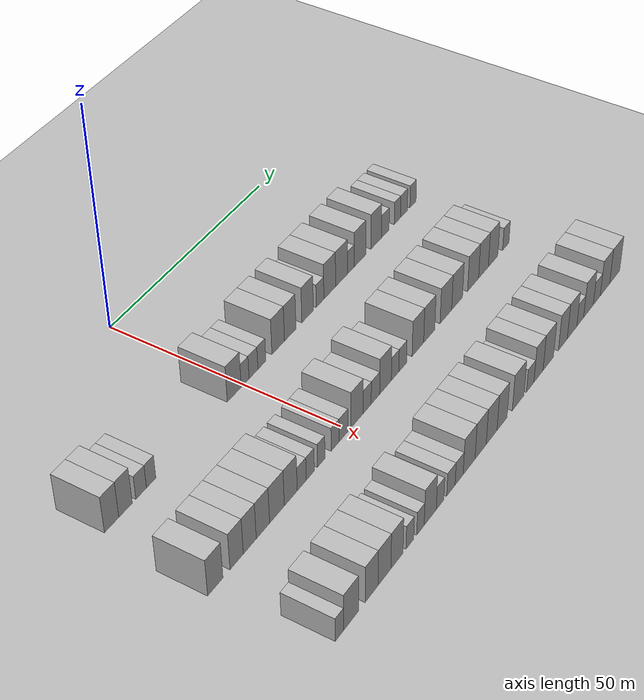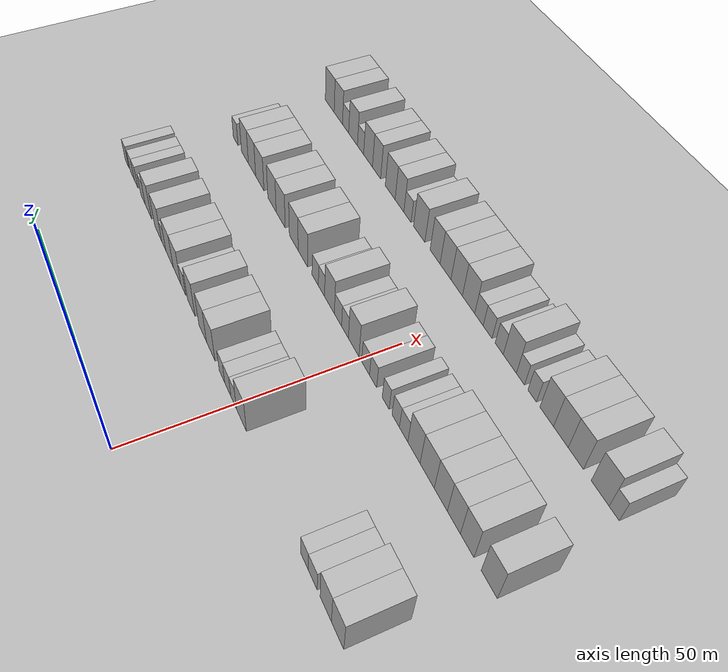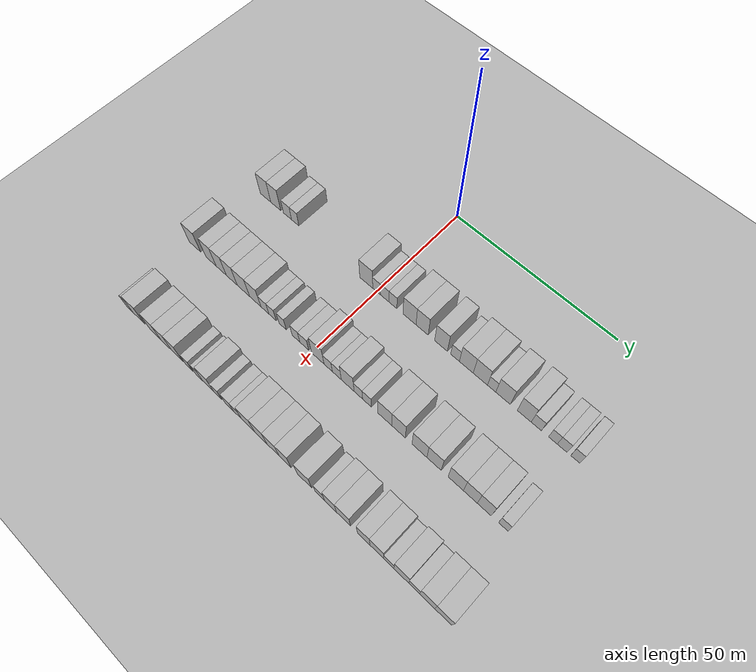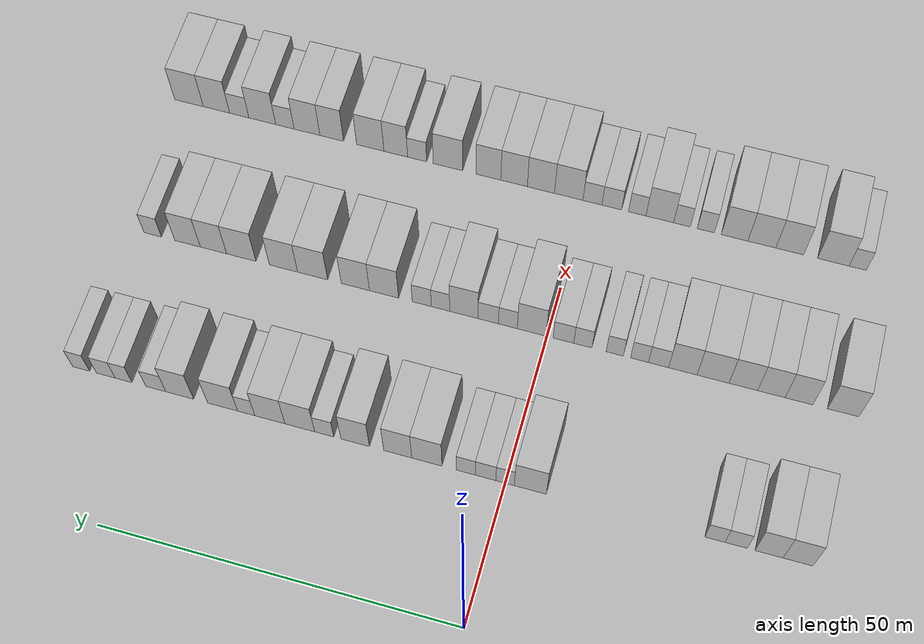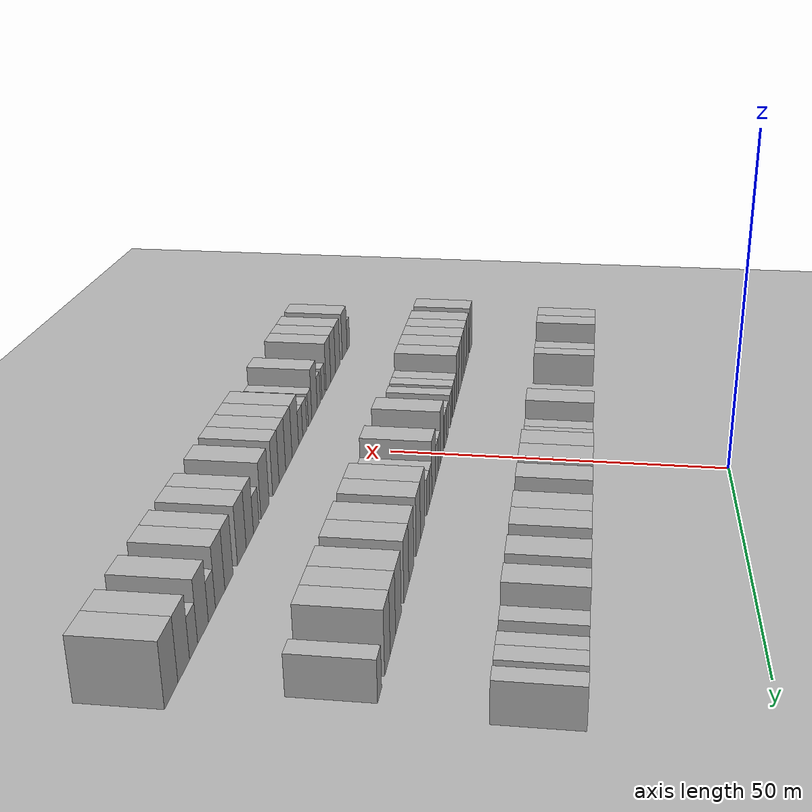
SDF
<sdf version="1.6">
 <world name="default">
  <include><name>ground_plane_1</name><uri>model://HANNAS_ground_plane</uri></include>
  <include>
   <name>ground_plane_2</name>
   <uri>model://HANNAS_ground_plane</uri>
   <pose>100 0 0  0 0 0</pose>
  </include>
  <model name="building_48">
   <static>1</static>
   <pose>25.0000 -39.3300 0 0.000000 0.000000 0.000000</pose>
   <link name="link">
    <pose>0 0 4.50 0 0 0</pose>
    <collision name="collision"><geometry><box><size>10.0000 3.9221 9.0000</size></box></geometry></collision>
    <visual name="visual">
     <cast_shadows>0</cast_shadows>
     <geometry><box><size>10.0000 3.9221 9.0000</size></box></geometry>
     <material>
      <script>
       <uri>model://HANNAS_wall/materials/scripts</uri>
       <uri>model://HANNAS_wall/materials/textures</uri>
       <name>vrc/HANNAS_wall</name>
      </script>
     </material>
    </visual>
   </link>
  </model>
  <model name="building_49">
   <static>1</static>
   <pose>25.0000 -35.5136 0 0.000000 0.000000 0.000000</pose>
   <link name="link">
    <pose>0 0 4.50 0 0 0</pose>
    <collision name="collision"><geometry><box><size>10.0000 3.7106 9.0000</size></box></geometry></collision>
    <visual name="visual">
     <cast_shadows>0</cast_shadows>
     <geometry><box><size>10.0000 3.7106 9.0000</size></box></geometry>
     <material>
      <script>
       <uri>model://HANNAS_wall/materials/scripts</uri>
       <uri>model://HANNAS_wall/materials/textures</uri>
       <name>vrc/HANNAS_wall</name>
      </script>
     </material>
    </visual>
   </link>
  </model>
  <model name="building_50">
   <static>1</static>
   <pose>25.0000 -31.1652 0 0.000000 0.000000 0.000000</pose>
   <link name="link">
    <pose>0 0 3.00 0 0 0</pose>
    <collision name="collision"><geometry><box><size>10.0000 2.9862 6.0000</size></box></geometry></collision>
    <visual name="visual">
     <cast_shadows>0</cast_shadows>
     <geometry><box><size>10.0000 2.9862 6.0000</size></box></geometry>
     <material>
      <script>
       <uri>model://HANNAS_wall/materials/scripts</uri>
       <uri>model://HANNAS_wall/materials/textures</uri>
       <name>vrc/HANNAS_wall</name>
      </script>
     </material>
    </visual>
   </link>
  </model>
  <model name="building_51">
   <static>1</static>
   <pose>25.0000 -28.3309 0 0.000000 0.000000 0.000000</pose>
   <link name="link">
    <pose>0 0 3.00 0 0 0</pose>
    <collision name="collision"><geometry><box><size>10.0000 2.6824 6.0000</size></box></geometry></collision>
    <visual name="visual">
     <cast_shadows>0</cast_shadows>
     <geometry><box><size>10.0000 2.6824 6.0000</size></box></geometry>
     <material>
      <script>
       <uri>model://HANNAS_wall/materials/scripts</uri>
       <uri>model://HANNAS_wall/materials/textures</uri>
       <name>vrc/HANNAS_wall</name>
      </script>
     </material>
    </visual>
   </link>
  </model>
  <model name="building_52">
   <static>1</static>
   <pose>25.0000 -3.3988 0 0.000000 0.000000 0.000000</pose>
   <link name="link">
    <pose>0 0 4.50 0 0 0</pose>
    <collision name="collision"><geometry><box><size>10.0000 4.3940 9.0000</size></box></geometry></collision>
    <visual name="visual">
     <cast_shadows>0</cast_shadows>
     <geometry><box><size>10.0000 4.3940 9.0000</size></box></geometry>
     <material>
      <script>
       <uri>model://HANNAS_wall/materials/scripts</uri>
       <uri>model://HANNAS_wall/materials/textures</uri>
       <name>vrc/HANNAS_wall</name>
      </script>
     </material>
    </visual>
   </link>
  </model>
  <model name="building_53">
   <static>1</static>
   <pose>25.0000 0.0634 0 0.000000 0.000000 0.000000</pose>
   <link name="link">
    <pose>0 0 3.00 0 0 0</pose>
    <collision name="collision"><geometry><box><size>10.0000 2.5305 6.0000</size></box></geometry></collision>
    <visual name="visual">
     <cast_shadows>0</cast_shadows>
     <geometry><box><size>10.0000 2.5305 6.0000</size></box></geometry>
     <material>
      <script>
       <uri>model://HANNAS_wall/materials/scripts</uri>
       <uri>model://HANNAS_wall/materials/textures</uri>
       <name>vrc/HANNAS_wall</name>
      </script>
     </material>
    </visual>
   </link>
  </model>
  <model name="building_54">
   <static>1</static>
   <pose>25.0000 2.7517 0 0.000000 0.000000 0.000000</pose>
   <link name="link">
    <pose>0 0 3.00 0 0 0</pose>
    <collision name="collision"><geometry><box><size>10.0000 2.8460 6.0000</size></box></geometry></collision>
    <visual name="visual">
     <cast_shadows>0</cast_shadows>
     <geometry><box><size>10.0000 2.8460 6.0000</size></box></geometry>
     <material>
      <script>
       <uri>model://HANNAS_wall/materials/scripts</uri>
       <uri>model://HANNAS_wall/materials/textures</uri>
       <name>vrc/HANNAS_wall</name>
      </script>
     </material>
    </visual>
   </link>
  </model>
  <model name="building_55">
   <static>1</static>
   <pose>25.0000 5.4729 0 0.000000 0.000000 0.000000</pose>
   <link name="link">
    <pose>0 0 3.00 0 0 0</pose>
    <collision name="collision"><geometry><box><size>10.0000 2.5965 6.0000</size></box></geometry></collision>
    <visual name="visual">
     <cast_shadows>0</cast_shadows>
     <geometry><box><size>10.0000 2.5965 6.0000</size></box></geometry>
     <material>
      <script>
       <uri>model://HANNAS_wall/materials/scripts</uri>
       <uri>model://HANNAS_wall/materials/textures</uri>
       <name>vrc/HANNAS_wall</name>
      </script>
     </material>
    </visual>
   </link>
  </model>
  <model name="building_56">
   <static>1</static>
   <pose>25.0000 10.8747 0 0.000000 0.000000 0.000000</pose>
   <link name="link">
    <pose>0 0 4.50 0 0 0</pose>
    <collision name="collision"><geometry><box><size>10.0000 4.2069 9.0000</size></box></geometry></collision>
    <visual name="visual">
     <cast_shadows>0</cast_shadows>
     <geometry><box><size>10.0000 4.2069 9.0000</size></box></geometry>
     <material>
      <script>
       <uri>model://HANNAS_wall/materials/scripts</uri>
       <uri>model://HANNAS_wall/materials/textures</uri>
       <name>vrc/HANNAS_wall</name>
      </script>
     </material>
    </visual>
   </link>
  </model>
  <model name="building_57">
   <static>1</static>
   <pose>25.0000 14.9296 0 0.000000 0.000000 0.000000</pose>
   <link name="link">
    <pose>0 0 4.50 0 0 0</pose>
    <collision name="collision"><geometry><box><size>10.0000 3.9028 9.0000</size></box></geometry></collision>
    <visual name="visual">
     <cast_shadows>0</cast_shadows>
     <geometry><box><size>10.0000 3.9028 9.0000</size></box></geometry>
     <material>
      <script>
       <uri>model://HANNAS_wall/materials/scripts</uri>
       <uri>model://HANNAS_wall/materials/textures</uri>
       <name>vrc/HANNAS_wall</name>
      </script>
     </material>
    </visual>
   </link>
  </model>
  <model name="building_58">
   <static>1</static>
   <pose>25.0000 20.8843 0 0.000000 0.000000 0.000000</pose>
   <link name="link">
    <pose>0 0 4.50 0 0 0</pose>
    <collision name="collision"><geometry><box><size>10.0000 4.0067 9.0000</size></box></geometry></collision>
    <visual name="visual">
     <cast_shadows>0</cast_shadows>
     <geometry><box><size>10.0000 4.0067 9.0000</size></box></geometry>
     <material>
      <script>
       <uri>model://HANNAS_wall/materials/scripts</uri>
       <uri>model://HANNAS_wall/materials/textures</uri>
       <name>vrc/HANNAS_wall</name>
      </script>
     </material>
    </visual>
   </link>
  </model>
  <model name="building_59">
   <static>1</static>
   <pose>25.0000 25.2368 0 0.000000 0.000000 0.000000</pose>
   <link name="link">
    <pose>0 0 3.00 0 0 0</pose>
    <collision name="collision"><geometry><box><size>10.0000 2.6983 6.0000</size></box></geometry></collision>
    <visual name="visual">
     <cast_shadows>0</cast_shadows>
     <geometry><box><size>10.0000 2.6983 6.0000</size></box></geometry>
     <material>
      <script>
       <uri>model://HANNAS_wall/materials/scripts</uri>
       <uri>model://HANNAS_wall/materials/textures</uri>
       <name>vrc/HANNAS_wall</name>
      </script>
     </material>
    </visual>
   </link>
  </model>
  <model name="building_60">
   <static>1</static>
   <pose>25.0000 28.6939 0 0.000000 0.000000 0.000000</pose>
   <link name="link">
    <pose>0 0 4.50 0 0 0</pose>
    <collision name="collision"><geometry><box><size>10.0000 4.2159 9.0000</size></box></geometry></collision>
    <visual name="visual">
     <cast_shadows>0</cast_shadows>
     <geometry><box><size>10.0000 4.2159 9.0000</size></box></geometry>
     <material>
      <script>
       <uri>model://HANNAS_wall/materials/scripts</uri>
       <uri>model://HANNAS_wall/materials/textures</uri>
       <name>vrc/HANNAS_wall</name>
      </script>
     </material>
    </visual>
   </link>
  </model>
  <model name="building_61">
   <static>1</static>
   <pose>25.0000 32.9397 0 0.000000 0.000000 0.000000</pose>
   <link name="link">
    <pose>0 0 4.50 0 0 0</pose>
    <collision name="collision"><geometry><box><size>10.0000 4.2757 9.0000</size></box></geometry></collision>
    <visual name="visual">
     <cast_shadows>0</cast_shadows>
     <geometry><box><size>10.0000 4.2757 9.0000</size></box></geometry>
     <material>
      <script>
       <uri>model://HANNAS_wall/materials/scripts</uri>
       <uri>model://HANNAS_wall/materials/textures</uri>
       <name>vrc/HANNAS_wall</name>
      </script>
     </material>
    </visual>
   </link>
  </model>
  <model name="building_62">
   <static>1</static>
   <pose>25.0000 36.3103 0 0.000000 0.000000 0.000000</pose>
   <link name="link">
    <pose>0 0 3.00 0 0 0</pose>
    <collision name="collision"><geometry><box><size>10.0000 2.4657 6.0000</size></box></geometry></collision>
    <visual name="visual">
     <cast_shadows>0</cast_shadows>
     <geometry><box><size>10.0000 2.4657 6.0000</size></box></geometry>
     <material>
      <script>
       <uri>model://HANNAS_wall/materials/scripts</uri>
       <uri>model://HANNAS_wall/materials/textures</uri>
       <name>vrc/HANNAS_wall</name>
      </script>
     </material>
    </visual>
   </link>
  </model>
  <model name="building_63">
   <static>1</static>
   <pose>25.0000 39.6957 0 0.000000 0.000000 0.000000</pose>
   <link name="link">
    <pose>0 0 4.50 0 0 0</pose>
    <collision name="collision"><geometry><box><size>10.0000 4.3051 9.0000</size></box></geometry></collision>
    <visual name="visual">
     <cast_shadows>0</cast_shadows>
     <geometry><box><size>10.0000 4.3051 9.0000</size></box></geometry>
     <material>
      <script>
       <uri>model://HANNAS_wall/materials/scripts</uri>
       <uri>model://HANNAS_wall/materials/textures</uri>
       <name>vrc/HANNAS_wall</name>
      </script>
     </material>
    </visual>
   </link>
  </model>
  <model name="building_64">
   <static>1</static>
   <pose>25.0000 45.8557 0 0.000000 0.000000 0.000000</pose>
   <link name="link">
    <pose>0 0 4.50 0 0 0</pose>
    <collision name="collision"><geometry><box><size>10.0000 4.0149 9.0000</size></box></geometry></collision>
    <visual name="visual">
     <cast_shadows>0</cast_shadows>
     <geometry><box><size>10.0000 4.0149 9.0000</size></box></geometry>
     <material>
      <script>
       <uri>model://HANNAS_wall/materials/scripts</uri>
       <uri>model://HANNAS_wall/materials/textures</uri>
       <name>vrc/HANNAS_wall</name>
      </script>
     </material>
    </visual>
   </link>
  </model>
  <model name="building_65">
   <static>1</static>
   <pose>25.0000 49.3188 0 0.000000 0.000000 0.000000</pose>
   <link name="link">
    <pose>0 0 3.00 0 0 0</pose>
    <collision name="collision"><geometry><box><size>10.0000 2.9112 6.0000</size></box></geometry></collision>
    <visual name="visual">
     <cast_shadows>0</cast_shadows>
     <geometry><box><size>10.0000 2.9112 6.0000</size></box></geometry>
     <material>
      <script>
       <uri>model://HANNAS_wall/materials/scripts</uri>
       <uri>model://HANNAS_wall/materials/textures</uri>
       <name>vrc/HANNAS_wall</name>
      </script>
     </material>
    </visual>
   </link>
  </model>
  <model name="building_66">
   <static>1</static>
   <pose>25.0000 53.9981 0 0.000000 0.000000 0.000000</pose>
   <link name="link">
    <pose>0 0 3.00 0 0 0</pose>
    <collision name="collision"><geometry><box><size>10.0000 2.4474 6.0000</size></box></geometry></collision>
    <visual name="visual">
     <cast_shadows>0</cast_shadows>
     <geometry><box><size>10.0000 2.4474 6.0000</size></box></geometry>
     <material>
      <script>
       <uri>model://HANNAS_wall/materials/scripts</uri>
       <uri>model://HANNAS_wall/materials/textures</uri>
       <name>vrc/HANNAS_wall</name>
      </script>
     </material>
    </visual>
   </link>
  </model>
  <model name="building_67">
   <static>1</static>
   <pose>25.0000 56.5836 0 0.000000 0.000000 0.000000</pose>
   <link name="link">
    <pose>0 0 3.00 0 0 0</pose>
    <collision name="collision"><geometry><box><size>10.0000 2.7238 6.0000</size></box></geometry></collision>
    <visual name="visual">
     <cast_shadows>0</cast_shadows>
     <geometry><box><size>10.0000 2.7238 6.0000</size></box></geometry>
     <material>
      <script>
       <uri>model://HANNAS_wall/materials/scripts</uri>
       <uri>model://HANNAS_wall/materials/textures</uri>
       <name>vrc/HANNAS_wall</name>
      </script>
     </material>
    </visual>
   </link>
  </model>
  <model name="building_68">
   <static>1</static>
   <pose>25.0000 60.1847 0 0.000000 0.000000 0.000000</pose>
   <link name="link">
    <pose>0 0 3.00 0 0 0</pose>
    <collision name="collision"><geometry><box><size>10.0000 2.4783 6.0000</size></box></geometry></collision>
    <visual name="visual">
     <cast_shadows>0</cast_shadows>
     <geometry><box><size>10.0000 2.4783 6.0000</size></box></geometry>
     <material>
      <script>
       <uri>model://HANNAS_wall/materials/scripts</uri>
       <uri>model://HANNAS_wall/materials/textures</uri>
       <name>vrc/HANNAS_wall</name>
      </script>
     </material>
    </visual>
   </link>
  </model>
  <model name="building_167">
   <static>1</static>
   <pose>47.0000 -41.3402 0 0.000000 0.000000 0.000000</pose>
   <link name="link">
    <pose>0 0 4.50 0 0 0</pose>
    <collision name="collision"><geometry><box><size>10.0000 4.2979 9.0000</size></box></geometry></collision>
    <visual name="visual">
     <cast_shadows>0</cast_shadows>
     <geometry><box><size>10.0000 4.2979 9.0000</size></box></geometry>
     <material>
      <script>
       <uri>model://HANNAS_wall/materials/scripts</uri>
       <uri>model://HANNAS_wall/materials/textures</uri>
       <name>vrc/HANNAS_wall</name>
      </script>
     </material>
    </visual>
   </link>
  </model>
  <model name="building_168">
   <static>1</static>
   <pose>47.0000 -35.2771 0 0.000000 0.000000 0.000000</pose>
   <link name="link">
    <pose>0 0 4.50 0 0 0</pose>
    <collision name="collision"><geometry><box><size>10.0000 3.8282 9.0000</size></box></geometry></collision>
    <visual name="visual">
     <cast_shadows>0</cast_shadows>
     <geometry><box><size>10.0000 3.8282 9.0000</size></box></geometry>
     <material>
      <script>
       <uri>model://HANNAS_wall/materials/scripts</uri>
       <uri>model://HANNAS_wall/materials/textures</uri>
       <name>vrc/HANNAS_wall</name>
      </script>
     </material>
    </visual>
   </link>
  </model>
  <model name="building_169">
   <static>1</static>
   <pose>47.0000 -31.4655 0 0.000000 0.000000 0.000000</pose>
   <link name="link">
    <pose>0 0 4.50 0 0 0</pose>
    <collision name="collision"><geometry><box><size>10.0000 3.7950 9.0000</size></box></geometry></collision>
    <visual name="visual">
     <cast_shadows>0</cast_shadows>
     <geometry><box><size>10.0000 3.7950 9.0000</size></box></geometry>
     <material>
      <script>
       <uri>model://HANNAS_wall/materials/scripts</uri>
       <uri>model://HANNAS_wall/materials/textures</uri>
       <name>vrc/HANNAS_wall</name>
      </script>
     </material>
    </visual>
   </link>
  </model>
  <model name="building_170">
   <static>1</static>
   <pose>47.0000 -27.5836 0 0.000000 0.000000 0.000000</pose>
   <link name="link">
    <pose>0 0 4.50 0 0 0</pose>
    <collision name="collision"><geometry><box><size>10.0000 3.9688 9.0000</size></box></geometry></collision>
    <visual name="visual">
     <cast_shadows>0</cast_shadows>
     <geometry><box><size>10.0000 3.9688 9.0000</size></box></geometry>
     <material>
      <script>
       <uri>model://HANNAS_wall/materials/scripts</uri>
       <uri>model://HANNAS_wall/materials/textures</uri>
       <name>vrc/HANNAS_wall</name>
      </script>
     </material>
    </visual>
   </link>
  </model>
  <model name="building_171">
   <static>1</static>
   <pose>47.0000 -23.3705 0 0.000000 0.000000 0.000000</pose>
   <link name="link">
    <pose>0 0 4.50 0 0 0</pose>
    <collision name="collision"><geometry><box><size>10.0000 4.4574 9.0000</size></box></geometry></collision>
    <visual name="visual">
     <cast_shadows>0</cast_shadows>
     <geometry><box><size>10.0000 4.4574 9.0000</size></box></geometry>
     <material>
      <script>
       <uri>model://HANNAS_wall/materials/scripts</uri>
       <uri>model://HANNAS_wall/materials/textures</uri>
       <name>vrc/HANNAS_wall</name>
      </script>
     </material>
    </visual>
   </link>
  </model>
  <model name="building_172">
   <static>1</static>
   <pose>47.0000 -19.1465 0 0.000000 0.000000 0.000000</pose>
   <link name="link">
    <pose>0 0 4.50 0 0 0</pose>
    <collision name="collision"><geometry><box><size>10.0000 3.9905 9.0000</size></box></geometry></collision>
    <visual name="visual">
     <cast_shadows>0</cast_shadows>
     <geometry><box><size>10.0000 3.9905 9.0000</size></box></geometry>
     <material>
      <script>
       <uri>model://HANNAS_wall/materials/scripts</uri>
       <uri>model://HANNAS_wall/materials/textures</uri>
       <name>vrc/HANNAS_wall</name>
      </script>
     </material>
    </visual>
   </link>
  </model>
  <model name="building_173">
   <static>1</static>
   <pose>47.0000 -15.7396 0 0.000000 0.000000 0.000000</pose>
   <link name="link">
    <pose>0 0 3.00 0 0 0</pose>
    <collision name="collision"><geometry><box><size>10.0000 2.8233 6.0000</size></box></geometry></collision>
    <visual name="visual">
     <cast_shadows>0</cast_shadows>
     <geometry><box><size>10.0000 2.8233 6.0000</size></box></geometry>
     <material>
      <script>
       <uri>model://HANNAS_wall/materials/scripts</uri>
       <uri>model://HANNAS_wall/materials/textures</uri>
       <name>vrc/HANNAS_wall</name>
      </script>
     </material>
    </visual>
   </link>
  </model>
  <model name="building_174">
   <static>1</static>
   <pose>47.0000 -13.0631 0 0.000000 0.000000 0.000000</pose>
   <link name="link">
    <pose>0 0 3.00 0 0 0</pose>
    <collision name="collision"><geometry><box><size>10.0000 2.5297 6.0000</size></box></geometry></collision>
    <visual name="visual">
     <cast_shadows>0</cast_shadows>
     <geometry><box><size>10.0000 2.5297 6.0000</size></box></geometry>
     <material>
      <script>
       <uri>model://HANNAS_wall/materials/scripts</uri>
       <uri>model://HANNAS_wall/materials/textures</uri>
       <name>vrc/HANNAS_wall</name>
      </script>
     </material>
    </visual>
   </link>
  </model>
  <model name="building_175">
   <static>1</static>
   <pose>47.0000 -9.5764 0 0.000000 0.000000 0.000000</pose>
   <link name="link">
    <pose>0 0 3.00 0 0 0</pose>
    <collision name="collision"><geometry><box><size>10.0000 2.4437 6.0000</size></box></geometry></collision>
    <visual name="visual">
     <cast_shadows>0</cast_shadows>
     <geometry><box><size>10.0000 2.4437 6.0000</size></box></geometry>
     <material>
      <script>
       <uri>model://HANNAS_wall/materials/scripts</uri>
       <uri>model://HANNAS_wall/materials/textures</uri>
       <name>vrc/HANNAS_wall</name>
      </script>
     </material>
    </visual>
   </link>
  </model>
  <model name="building_176">
   <static>1</static>
   <pose>47.0000 -5.0606 0 0.000000 0.000000 0.000000</pose>
   <link name="link">
    <pose>0 0 3.00 0 0 0</pose>
    <collision name="collision"><geometry><box><size>10.0000 2.5880 6.0000</size></box></geometry></collision>
    <visual name="visual">
     <cast_shadows>0</cast_shadows>
     <geometry><box><size>10.0000 2.5880 6.0000</size></box></geometry>
     <material>
      <script>
       <uri>model://HANNAS_wall/materials/scripts</uri>
       <uri>model://HANNAS_wall/materials/textures</uri>
       <name>vrc/HANNAS_wall</name>
      </script>
     </material>
    </visual>
   </link>
  </model>
  <model name="building_177">
   <static>1</static>
   <pose>47.0000 -2.2888 0 0.000000 0.000000 0.000000</pose>
   <link name="link">
    <pose>0 0 3.00 0 0 0</pose>
    <collision name="collision"><geometry><box><size>10.0000 2.9557 6.0000</size></box></geometry></collision>
    <visual name="visual">
     <cast_shadows>0</cast_shadows>
     <geometry><box><size>10.0000 2.9557 6.0000</size></box></geometry>
     <material>
      <script>
       <uri>model://HANNAS_wall/materials/scripts</uri>
       <uri>model://HANNAS_wall/materials/textures</uri>
       <name>vrc/HANNAS_wall</name>
      </script>
     </material>
    </visual>
   </link>
  </model>
  <model name="building_178">
   <static>1</static>
   <pose>47.0000 2.2483 0 0.000000 0.000000 0.000000</pose>
   <link name="link">
    <pose>0 0 4.50 0 0 0</pose>
    <collision name="collision"><geometry><box><size>10.0000 4.1184 9.0000</size></box></geometry></collision>
    <visual name="visual">
     <cast_shadows>0</cast_shadows>
     <geometry><box><size>10.0000 4.1184 9.0000</size></box></geometry>
     <material>
      <script>
       <uri>model://HANNAS_wall/materials/scripts</uri>
       <uri>model://HANNAS_wall/materials/textures</uri>
       <name>vrc/HANNAS_wall</name>
      </script>
     </material>
    </visual>
   </link>
  </model>
  <model name="building_179">
   <static>1</static>
   <pose>47.0000 5.6561 0 0.000000 0.000000 0.000000</pose>
   <link name="link">
    <pose>0 0 3.00 0 0 0</pose>
    <collision name="collision"><geometry><box><size>10.0000 2.6973 6.0000</size></box></geometry></collision>
    <visual name="visual">
     <cast_shadows>0</cast_shadows>
     <geometry><box><size>10.0000 2.6973 6.0000</size></box></geometry>
     <material>
      <script>
       <uri>model://HANNAS_wall/materials/scripts</uri>
       <uri>model://HANNAS_wall/materials/textures</uri>
       <name>vrc/HANNAS_wall</name>
      </script>
     </material>
    </visual>
   </link>
  </model>
  <model name="building_180">
   <static>1</static>
   <pose>47.0000 8.4662 0 0.000000 0.000000 0.000000</pose>
   <link name="link">
    <pose>0 0 3.00 0 0 0</pose>
    <collision name="collision"><geometry><box><size>10.0000 2.9229 6.0000</size></box></geometry></collision>
    <visual name="visual">
     <cast_shadows>0</cast_shadows>
     <geometry><box><size>10.0000 2.9229 6.0000</size></box></geometry>
     <material>
      <script>
       <uri>model://HANNAS_wall/materials/scripts</uri>
       <uri>model://HANNAS_wall/materials/textures</uri>
       <name>vrc/HANNAS_wall</name>
      </script>
     </material>
    </visual>
   </link>
  </model>
  <model name="building_181">
   <static>1</static>
   <pose>47.0000 11.9756 0 0.000000 0.000000 0.000000</pose>
   <link name="link">
    <pose>0 0 4.50 0 0 0</pose>
    <collision name="collision"><geometry><box><size>10.0000 4.0960 9.0000</size></box></geometry></collision>
    <visual name="visual">
     <cast_shadows>0</cast_shadows>
     <geometry><box><size>10.0000 4.0960 9.0000</size></box></geometry>
     <material>
      <script>
       <uri>model://HANNAS_wall/materials/scripts</uri>
       <uri>model://HANNAS_wall/materials/textures</uri>
       <name>vrc/HANNAS_wall</name>
      </script>
     </material>
    </visual>
   </link>
  </model>
  <model name="building_182">
   <static>1</static>
   <pose>47.0000 15.3592 0 0.000000 0.000000 0.000000</pose>
   <link name="link">
    <pose>0 0 3.00 0 0 0</pose>
    <collision name="collision"><geometry><box><size>10.0000 2.6712 6.0000</size></box></geometry></collision>
    <visual name="visual">
     <cast_shadows>0</cast_shadows>
     <geometry><box><size>10.0000 2.6712 6.0000</size></box></geometry>
     <material>
      <script>
       <uri>model://HANNAS_wall/materials/scripts</uri>
       <uri>model://HANNAS_wall/materials/textures</uri>
       <name>vrc/HANNAS_wall</name>
      </script>
     </material>
    </visual>
   </link>
  </model>
  <model name="building_183">
   <static>1</static>
   <pose>47.0000 18.0819 0 0.000000 0.000000 0.000000</pose>
   <link name="link">
    <pose>0 0 3.00 0 0 0</pose>
    <collision name="collision"><geometry><box><size>10.0000 2.7742 6.0000</size></box></geometry></collision>
    <visual name="visual">
     <cast_shadows>0</cast_shadows>
     <geometry><box><size>10.0000 2.7742 6.0000</size></box></geometry>
     <material>
      <script>
       <uri>model://HANNAS_wall/materials/scripts</uri>
       <uri>model://HANNAS_wall/materials/textures</uri>
       <name>vrc/HANNAS_wall</name>
      </script>
     </material>
    </visual>
   </link>
  </model>
  <model name="building_184">
   <static>1</static>
   <pose>47.0000 23.5979 0 0.000000 0.000000 0.000000</pose>
   <link name="link">
    <pose>0 0 4.50 0 0 0</pose>
    <collision name="collision"><geometry><box><size>10.0000 4.2579 9.0000</size></box></geometry></collision>
    <visual name="visual">
     <cast_shadows>0</cast_shadows>
     <geometry><box><size>10.0000 4.2579 9.0000</size></box></geometry>
     <material>
      <script>
       <uri>model://HANNAS_wall/materials/scripts</uri>
       <uri>model://HANNAS_wall/materials/textures</uri>
       <name>vrc/HANNAS_wall</name>
      </script>
     </material>
    </visual>
   </link>
  </model>
  <model name="building_185">
   <static>1</static>
   <pose>47.0000 27.7989 0 0.000000 0.000000 0.000000</pose>
   <link name="link">
    <pose>0 0 4.50 0 0 0</pose>
    <collision name="collision"><geometry><box><size>10.0000 4.1440 9.0000</size></box></geometry></collision>
    <visual name="visual">
     <cast_shadows>0</cast_shadows>
     <geometry><box><size>10.0000 4.1440 9.0000</size></box></geometry>
     <material>
      <script>
       <uri>model://HANNAS_wall/materials/scripts</uri>
       <uri>model://HANNAS_wall/materials/textures</uri>
       <name>vrc/HANNAS_wall</name>
      </script>
     </material>
    </visual>
   </link>
  </model>
  <model name="building_186">
   <static>1</static>
   <pose>47.0000 34.0922 0 0.000000 0.000000 0.000000</pose>
   <link name="link">
    <pose>0 0 4.50 0 0 0</pose>
    <collision name="collision"><geometry><box><size>10.0000 4.4426 9.0000</size></box></geometry></collision>
    <visual name="visual">
     <cast_shadows>0</cast_shadows>
     <geometry><box><size>10.0000 4.4426 9.0000</size></box></geometry>
     <material>
      <script>
       <uri>model://HANNAS_wall/materials/scripts</uri>
       <uri>model://HANNAS_wall/materials/textures</uri>
       <name>vrc/HANNAS_wall</name>
      </script>
     </material>
    </visual>
   </link>
  </model>
  <model name="building_187">
   <static>1</static>
   <pose>47.0000 38.4061 0 0.000000 0.000000 0.000000</pose>
   <link name="link">
    <pose>0 0 4.50 0 0 0</pose>
    <collision name="collision"><geometry><box><size>10.0000 4.1854 9.0000</size></box></geometry></collision>
    <visual name="visual">
     <cast_shadows>0</cast_shadows>
     <geometry><box><size>10.0000 4.1854 9.0000</size></box></geometry>
     <material>
      <script>
       <uri>model://HANNAS_wall/materials/scripts</uri>
       <uri>model://HANNAS_wall/materials/textures</uri>
       <name>vrc/HANNAS_wall</name>
      </script>
     </material>
    </visual>
   </link>
  </model>
  <model name="building_188">
   <static>1</static>
   <pose>47.0000 44.6927 0 0.000000 0.000000 0.000000</pose>
   <link name="link">
    <pose>0 0 4.50 0 0 0</pose>
    <collision name="collision"><geometry><box><size>10.0000 4.3877 9.0000</size></box></geometry></collision>
    <visual name="visual">
     <cast_shadows>0</cast_shadows>
     <geometry><box><size>10.0000 4.3877 9.0000</size></box></geometry>
     <material>
      <script>
       <uri>model://HANNAS_wall/materials/scripts</uri>
       <uri>model://HANNAS_wall/materials/textures</uri>
       <name>vrc/HANNAS_wall</name>
      </script>
     </material>
    </visual>
   </link>
  </model>
  <model name="building_189">
   <static>1</static>
   <pose>47.0000 48.8534 0 0.000000 0.000000 0.000000</pose>
   <link name="link">
    <pose>0 0 4.50 0 0 0</pose>
    <collision name="collision"><geometry><box><size>10.0000 3.9337 9.0000</size></box></geometry></collision>
    <visual name="visual">
     <cast_shadows>0</cast_shadows>
     <geometry><box><size>10.0000 3.9337 9.0000</size></box></geometry>
     <material>
      <script>
       <uri>model://HANNAS_wall/materials/scripts</uri>
       <uri>model://HANNAS_wall/materials/textures</uri>
       <name>vrc/HANNAS_wall</name>
      </script>
     </material>
    </visual>
   </link>
  </model>
  <model name="building_190">
   <static>1</static>
   <pose>47.0000 52.7515 0 0.000000 0.000000 0.000000</pose>
   <link name="link">
    <pose>0 0 4.50 0 0 0</pose>
    <collision name="collision"><geometry><box><size>10.0000 3.8626 9.0000</size></box></geometry></collision>
    <visual name="visual">
     <cast_shadows>0</cast_shadows>
     <geometry><box><size>10.0000 3.8626 9.0000</size></box></geometry>
     <material>
      <script>
       <uri>model://HANNAS_wall/materials/scripts</uri>
       <uri>model://HANNAS_wall/materials/textures</uri>
       <name>vrc/HANNAS_wall</name>
      </script>
     </material>
    </visual>
   </link>
  </model>
  <model name="building_191">
   <static>1</static>
   <pose>47.0000 58.0063 0 0.000000 0.000000 0.000000</pose>
   <link name="link">
    <pose>0 0 3.00 0 0 0</pose>
    <collision name="collision"><geometry><box><size>10.0000 2.6468 6.0000</size></box></geometry></collision>
    <visual name="visual">
     <cast_shadows>0</cast_shadows>
     <geometry><box><size>10.0000 2.6468 6.0000</size></box></geometry>
     <material>
      <script>
       <uri>model://HANNAS_wall/materials/scripts</uri>
       <uri>model://HANNAS_wall/materials/textures</uri>
       <name>vrc/HANNAS_wall</name>
      </script>
     </material>
    </visual>
   </link>
  </model>
  <model name="building_289">
   <static>1</static>
   <pose>69.0000 -39.4923 0 0.000000 0.000000 0.000000</pose>
   <link name="link">
    <pose>0 0 3.00 0 0 0</pose>
    <collision name="collision"><geometry><box><size>10.0000 2.4628 6.0000</size></box></geometry></collision>
    <visual name="visual">
     <cast_shadows>0</cast_shadows>
     <geometry><box><size>10.0000 2.4628 6.0000</size></box></geometry>
     <material>
      <script>
       <uri>model://HANNAS_wall/materials/scripts</uri>
       <uri>model://HANNAS_wall/materials/textures</uri>
       <name>vrc/HANNAS_wall</name>
      </script>
     </material>
    </visual>
   </link>
  </model>
  <model name="building_290">
   <static>1</static>
   <pose>69.0000 -36.0116 0 0.000000 0.000000 0.000000</pose>
   <link name="link">
    <pose>0 0 4.50 0 0 0</pose>
    <collision name="collision"><geometry><box><size>10.0000 4.4986 9.0000</size></box></geometry></collision>
    <visual name="visual">
     <cast_shadows>0</cast_shadows>
     <geometry><box><size>10.0000 4.4986 9.0000</size></box></geometry>
     <material>
      <script>
       <uri>model://HANNAS_wall/materials/scripts</uri>
       <uri>model://HANNAS_wall/materials/textures</uri>
       <name>vrc/HANNAS_wall</name>
      </script>
     </material>
    </visual>
   </link>
  </model>
  <model name="building_291">
   <static>1</static>
   <pose>69.0000 -29.7605 0 0.000000 0.000000 0.000000</pose>
   <link name="link">
    <pose>0 0 4.50 0 0 0</pose>
    <collision name="collision"><geometry><box><size>10.0000 4.0036 9.0000</size></box></geometry></collision>
    <visual name="visual">
     <cast_shadows>0</cast_shadows>
     <geometry><box><size>10.0000 4.0036 9.0000</size></box></geometry>
     <material>
      <script>
       <uri>model://HANNAS_wall/materials/scripts</uri>
       <uri>model://HANNAS_wall/materials/textures</uri>
       <name>vrc/HANNAS_wall</name>
      </script>
     </material>
    </visual>
   </link>
  </model>
  <model name="building_292">
   <static>1</static>
   <pose>69.0000 -25.7433 0 0.000000 0.000000 0.000000</pose>
   <link name="link">
    <pose>0 0 4.50 0 0 0</pose>
    <collision name="collision"><geometry><box><size>10.0000 4.0308 9.0000</size></box></geometry></collision>
    <visual name="visual">
     <cast_shadows>0</cast_shadows>
     <geometry><box><size>10.0000 4.0308 9.0000</size></box></geometry>
     <material>
      <script>
       <uri>model://HANNAS_wall/materials/scripts</uri>
       <uri>model://HANNAS_wall/materials/textures</uri>
       <name>vrc/HANNAS_wall</name>
      </script>
     </material>
    </visual>
   </link>
  </model>
  <model name="building_293">
   <static>1</static>
   <pose>69.0000 -21.7974 0 0.000000 0.000000 0.000000</pose>
   <link name="link">
    <pose>0 0 4.50 0 0 0</pose>
    <collision name="collision"><geometry><box><size>10.0000 3.8610 9.0000</size></box></geometry></collision>
    <visual name="visual">
     <cast_shadows>0</cast_shadows>
     <geometry><box><size>10.0000 3.8610 9.0000</size></box></geometry>
     <material>
      <script>
       <uri>model://HANNAS_wall/materials/scripts</uri>
       <uri>model://HANNAS_wall/materials/textures</uri>
       <name>vrc/HANNAS_wall</name>
      </script>
     </material>
    </visual>
   </link>
  </model>
  <model name="building_294">
   <static>1</static>
   <pose>69.0000 -17.6179 0 0.000000 0.000000 0.000000</pose>
   <link name="link">
    <pose>0 0 3.00 0 0 0</pose>
    <collision name="collision"><geometry><box><size>10.0000 2.4979 6.0000</size></box></geometry></collision>
    <visual name="visual">
     <cast_shadows>0</cast_shadows>
     <geometry><box><size>10.0000 2.4979 6.0000</size></box></geometry>
     <material>
      <script>
       <uri>model://HANNAS_wall/materials/scripts</uri>
       <uri>model://HANNAS_wall/materials/textures</uri>
       <name>vrc/HANNAS_wall</name>
      </script>
     </material>
    </visual>
   </link>
  </model>
  <model name="building_295">
   <static>1</static>
   <pose>69.0000 -14.1443 0 0.000000 0.000000 0.000000</pose>
   <link name="link">
    <pose>0 0 3.00 0 0 0</pose>
    <collision name="collision"><geometry><box><size>10.0000 2.4494 6.0000</size></box></geometry></collision>
    <visual name="visual">
     <cast_shadows>0</cast_shadows>
     <geometry><box><size>10.0000 2.4494 6.0000</size></box></geometry>
     <material>
      <script>
       <uri>model://HANNAS_wall/materials/scripts</uri>
       <uri>model://HANNAS_wall/materials/textures</uri>
       <name>vrc/HANNAS_wall</name>
      </script>
     </material>
    </visual>
   </link>
  </model>
  <model name="building_296">
   <static>1</static>
   <pose>69.0000 -10.8927 0 0.000000 0.000000 0.000000</pose>
   <link name="link">
    <pose>0 0 4.50 0 0 0</pose>
    <collision name="collision"><geometry><box><size>10.0000 4.0538 9.0000</size></box></geometry></collision>
    <visual name="visual">
     <cast_shadows>0</cast_shadows>
     <geometry><box><size>10.0000 4.0538 9.0000</size></box></geometry>
     <material>
      <script>
       <uri>model://HANNAS_wall/materials/scripts</uri>
       <uri>model://HANNAS_wall/materials/textures</uri>
       <name>vrc/HANNAS_wall</name>
      </script>
     </material>
    </visual>
   </link>
  </model>
  <model name="building_297">
   <static>1</static>
   <pose>69.0000 -7.5825 0 0.000000 0.000000 0.000000</pose>
   <link name="link">
    <pose>0 0 3.00 0 0 0</pose>
    <collision name="collision"><geometry><box><size>10.0000 2.5666 6.0000</size></box></geometry></collision>
    <visual name="visual">
     <cast_shadows>0</cast_shadows>
     <geometry><box><size>10.0000 2.5666 6.0000</size></box></geometry>
     <material>
      <script>
       <uri>model://HANNAS_wall/materials/scripts</uri>
       <uri>model://HANNAS_wall/materials/textures</uri>
       <name>vrc/HANNAS_wall</name>
      </script>
     </material>
    </visual>
   </link>
  </model>
  <model name="building_298">
   <static>1</static>
   <pose>69.0000 -3.8428 0 0.000000 0.000000 0.000000</pose>
   <link name="link">
    <pose>0 0 3.00 0 0 0</pose>
    <collision name="collision"><geometry><box><size>10.0000 2.9129 6.0000</size></box></geometry></collision>
    <visual name="visual">
     <cast_shadows>0</cast_shadows>
     <geometry><box><size>10.0000 2.9129 6.0000</size></box></geometry>
     <material>
      <script>
       <uri>model://HANNAS_wall/materials/scripts</uri>
       <uri>model://HANNAS_wall/materials/textures</uri>
       <name>vrc/HANNAS_wall</name>
      </script>
     </material>
    </visual>
   </link>
  </model>
  <model name="building_299">
   <static>1</static>
   <pose>69.0000 -0.9809 0 0.000000 0.000000 0.000000</pose>
   <link name="link">
    <pose>0 0 3.00 0 0 0</pose>
    <collision name="collision"><geometry><box><size>10.0000 2.8109 6.0000</size></box></geometry></collision>
    <visual name="visual">
     <cast_shadows>0</cast_shadows>
     <geometry><box><size>10.0000 2.8109 6.0000</size></box></geometry>
     <material>
      <script>
       <uri>model://HANNAS_wall/materials/scripts</uri>
       <uri>model://HANNAS_wall/materials/textures</uri>
       <name>vrc/HANNAS_wall</name>
      </script>
     </material>
    </visual>
   </link>
  </model>
  <model name="building_300">
   <static>1</static>
   <pose>69.0000 2.5379 0 0.000000 0.000000 0.000000</pose>
   <link name="link">
    <pose>0 0 4.50 0 0 0</pose>
    <collision name="collision"><geometry><box><size>10.0000 4.2267 9.0000</size></box></geometry></collision>
    <visual name="visual">
     <cast_shadows>0</cast_shadows>
     <geometry><box><size>10.0000 4.2267 9.0000</size></box></geometry>
     <material>
      <script>
       <uri>model://HANNAS_wall/materials/scripts</uri>
       <uri>model://HANNAS_wall/materials/textures</uri>
       <name>vrc/HANNAS_wall</name>
      </script>
     </material>
    </visual>
   </link>
  </model>
  <model name="building_301">
   <static>1</static>
   <pose>69.0000 6.6783 0 0.000000 0.000000 0.000000</pose>
   <link name="link">
    <pose>0 0 4.50 0 0 0</pose>
    <collision name="collision"><geometry><box><size>10.0000 4.0542 9.0000</size></box></geometry></collision>
    <visual name="visual">
     <cast_shadows>0</cast_shadows>
     <geometry><box><size>10.0000 4.0542 9.0000</size></box></geometry>
     <material>
      <script>
       <uri>model://HANNAS_wall/materials/scripts</uri>
       <uri>model://HANNAS_wall/materials/textures</uri>
       <name>vrc/HANNAS_wall</name>
      </script>
     </material>
    </visual>
   </link>
  </model>
  <model name="building_302">
   <static>1</static>
   <pose>69.0000 10.6870 0 0.000000 0.000000 0.000000</pose>
   <link name="link">
    <pose>0 0 4.50 0 0 0</pose>
    <collision name="collision"><geometry><box><size>10.0000 3.9631 9.0000</size></box></geometry></collision>
    <visual name="visual">
     <cast_shadows>0</cast_shadows>
     <geometry><box><size>10.0000 3.9631 9.0000</size></box></geometry>
     <material>
      <script>
       <uri>model://HANNAS_wall/materials/scripts</uri>
       <uri>model://HANNAS_wall/materials/textures</uri>
       <name>vrc/HANNAS_wall</name>
      </script>
     </material>
    </visual>
   </link>
  </model>
  <model name="building_303">
   <static>1</static>
   <pose>69.0000 14.5384 0 0.000000 0.000000 0.000000</pose>
   <link name="link">
    <pose>0 0 4.50 0 0 0</pose>
    <collision name="collision"><geometry><box><size>10.0000 3.7397 9.0000</size></box></geometry></collision>
    <visual name="visual">
     <cast_shadows>0</cast_shadows>
     <geometry><box><size>10.0000 3.7397 9.0000</size></box></geometry>
     <material>
      <script>
       <uri>model://HANNAS_wall/materials/scripts</uri>
       <uri>model://HANNAS_wall/materials/textures</uri>
       <name>vrc/HANNAS_wall</name>
      </script>
     </material>
    </visual>
   </link>
  </model>
  <model name="building_304">
   <static>1</static>
   <pose>69.0000 20.6271 0 0.000000 0.000000 0.000000</pose>
   <link name="link">
    <pose>0 0 4.50 0 0 0</pose>
    <collision name="collision"><geometry><box><size>10.0000 4.4377 9.0000</size></box></geometry></collision>
    <visual name="visual">
     <cast_shadows>0</cast_shadows>
     <geometry><box><size>10.0000 4.4377 9.0000</size></box></geometry>
     <material>
      <script>
       <uri>model://HANNAS_wall/materials/scripts</uri>
       <uri>model://HANNAS_wall/materials/textures</uri>
       <name>vrc/HANNAS_wall</name>
      </script>
     </material>
    </visual>
   </link>
  </model>
  <model name="building_305">
   <static>1</static>
   <pose>69.0000 25.2940 0 0.000000 0.000000 0.000000</pose>
   <link name="link">
    <pose>0 0 3.00 0 0 0</pose>
    <collision name="collision"><geometry><box><size>10.0000 2.8960 6.0000</size></box></geometry></collision>
    <visual name="visual">
     <cast_shadows>0</cast_shadows>
     <geometry><box><size>10.0000 2.8960 6.0000</size></box></geometry>
     <material>
      <script>
       <uri>model://HANNAS_wall/materials/scripts</uri>
       <uri>model://HANNAS_wall/materials/textures</uri>
       <name>vrc/HANNAS_wall</name>
      </script>
     </material>
    </visual>
   </link>
  </model>
  <model name="building_306">
   <static>1</static>
   <pose>69.0000 28.5463 0 0.000000 0.000000 0.000000</pose>
   <link name="link">
    <pose>0 0 4.50 0 0 0</pose>
    <collision name="collision"><geometry><box><size>10.0000 3.6087 9.0000</size></box></geometry></collision>
    <visual name="visual">
     <cast_shadows>0</cast_shadows>
     <geometry><box><size>10.0000 3.6087 9.0000</size></box></geometry>
     <material>
      <script>
       <uri>model://HANNAS_wall/materials/scripts</uri>
       <uri>model://HANNAS_wall/materials/textures</uri>
       <name>vrc/HANNAS_wall</name>
      </script>
     </material>
    </visual>
   </link>
  </model>
  <model name="building_307">
   <static>1</static>
   <pose>69.0000 32.4406 0 0.000000 0.000000 0.000000</pose>
   <link name="link">
    <pose>0 0 4.50 0 0 0</pose>
    <collision name="collision"><geometry><box><size>10.0000 4.1797 9.0000</size></box></geometry></collision>
    <visual name="visual">
     <cast_shadows>0</cast_shadows>
     <geometry><box><size>10.0000 4.1797 9.0000</size></box></geometry>
     <material>
      <script>
       <uri>model://HANNAS_wall/materials/scripts</uri>
       <uri>model://HANNAS_wall/materials/textures</uri>
       <name>vrc/HANNAS_wall</name>
      </script>
     </material>
    </visual>
   </link>
  </model>
  <model name="building_308">
   <static>1</static>
   <pose>69.0000 38.3484 0 0.000000 0.000000 0.000000</pose>
   <link name="link">
    <pose>0 0 4.50 0 0 0</pose>
    <collision name="collision"><geometry><box><size>10.0000 3.6360 9.0000</size></box></geometry></collision>
    <visual name="visual">
     <cast_shadows>0</cast_shadows>
     <geometry><box><size>10.0000 3.6360 9.0000</size></box></geometry>
     <material>
      <script>
       <uri>model://HANNAS_wall/materials/scripts</uri>
       <uri>model://HANNAS_wall/materials/textures</uri>
       <name>vrc/HANNAS_wall</name>
      </script>
     </material>
    </visual>
   </link>
  </model>
  <model name="building_309">
   <static>1</static>
   <pose>69.0000 42.1642 0 0.000000 0.000000 0.000000</pose>
   <link name="link">
    <pose>0 0 4.50 0 0 0</pose>
    <collision name="collision"><geometry><box><size>10.0000 3.9955 9.0000</size></box></geometry></collision>
    <visual name="visual">
     <cast_shadows>0</cast_shadows>
     <geometry><box><size>10.0000 3.9955 9.0000</size></box></geometry>
     <material>
      <script>
       <uri>model://HANNAS_wall/materials/scripts</uri>
       <uri>model://HANNAS_wall/materials/textures</uri>
       <name>vrc/HANNAS_wall</name>
      </script>
     </material>
    </visual>
   </link>
  </model>
  <model name="building_310">
   <static>1</static>
   <pose>69.0000 45.5906 0 0.000000 0.000000 0.000000</pose>
   <link name="link">
    <pose>0 0 3.00 0 0 0</pose>
    <collision name="collision"><geometry><box><size>10.0000 2.8572 6.0000</size></box></geometry></collision>
    <visual name="visual">
     <cast_shadows>0</cast_shadows>
     <geometry><box><size>10.0000 2.8572 6.0000</size></box></geometry>
     <material>
      <script>
       <uri>model://HANNAS_wall/materials/scripts</uri>
       <uri>model://HANNAS_wall/materials/textures</uri>
       <name>vrc/HANNAS_wall</name>
      </script>
     </material>
    </visual>
   </link>
  </model>
  <model name="building_311">
   <static>1</static>
   <pose>69.0000 49.0994 0 0.000000 0.000000 0.000000</pose>
   <link name="link">
    <pose>0 0 4.50 0 0 0</pose>
    <collision name="collision"><geometry><box><size>10.0000 4.1605 9.0000</size></box></geometry></collision>
    <visual name="visual">
     <cast_shadows>0</cast_shadows>
     <geometry><box><size>10.0000 4.1605 9.0000</size></box></geometry>
     <material>
      <script>
       <uri>model://HANNAS_wall/materials/scripts</uri>
       <uri>model://HANNAS_wall/materials/textures</uri>
       <name>vrc/HANNAS_wall</name>
      </script>
     </material>
    </visual>
   </link>
  </model>
  <model name="building_312">
   <static>1</static>
   <pose>69.0000 52.6784 0 0.000000 0.000000 0.000000</pose>
   <link name="link">
    <pose>0 0 3.00 0 0 0</pose>
    <collision name="collision"><geometry><box><size>10.0000 2.9975 6.0000</size></box></geometry></collision>
    <visual name="visual">
     <cast_shadows>0</cast_shadows>
     <geometry><box><size>10.0000 2.9975 6.0000</size></box></geometry>
     <material>
      <script>
       <uri>model://HANNAS_wall/materials/scripts</uri>
       <uri>model://HANNAS_wall/materials/textures</uri>
       <name>vrc/HANNAS_wall</name>
      </script>
     </material>
    </visual>
   </link>
  </model>
  <model name="building_313">
   <static>1</static>
   <pose>69.0000 56.2357 0 0.000000 0.000000 0.000000</pose>
   <link name="link">
    <pose>0 0 4.50 0 0 0</pose>
    <collision name="collision"><geometry><box><size>10.0000 4.1172 9.0000</size></box></geometry></collision>
    <visual name="visual">
     <cast_shadows>0</cast_shadows>
     <geometry><box><size>10.0000 4.1172 9.0000</size></box></geometry>
     <material>
      <script>
       <uri>model://HANNAS_wall/materials/scripts</uri>
       <uri>model://HANNAS_wall/materials/textures</uri>
       <name>vrc/HANNAS_wall</name>
      </script>
     </material>
    </visual>
   </link>
  </model>
  <model name="building_314">
   <static>1</static>
   <pose>69.0000 60.5432 0 0.000000 0.000000 0.000000</pose>
   <link name="link">
    <pose>0 0 4.50 0 0 0</pose>
    <collision name="collision"><geometry><box><size>10.0000 4.4977 9.0000</size></box></geometry></collision>
    <visual name="visual">
     <cast_shadows>0</cast_shadows>
     <geometry><box><size>10.0000 4.4977 9.0000</size></box></geometry>
     <material>
      <script>
       <uri>model://HANNAS_wall/materials/scripts</uri>
       <uri>model://HANNAS_wall/materials/textures</uri>
       <name>vrc/HANNAS_wall</name>
      </script>
     </material>
    </visual>
   </link>
  </model>
 </world>
</sdf>
